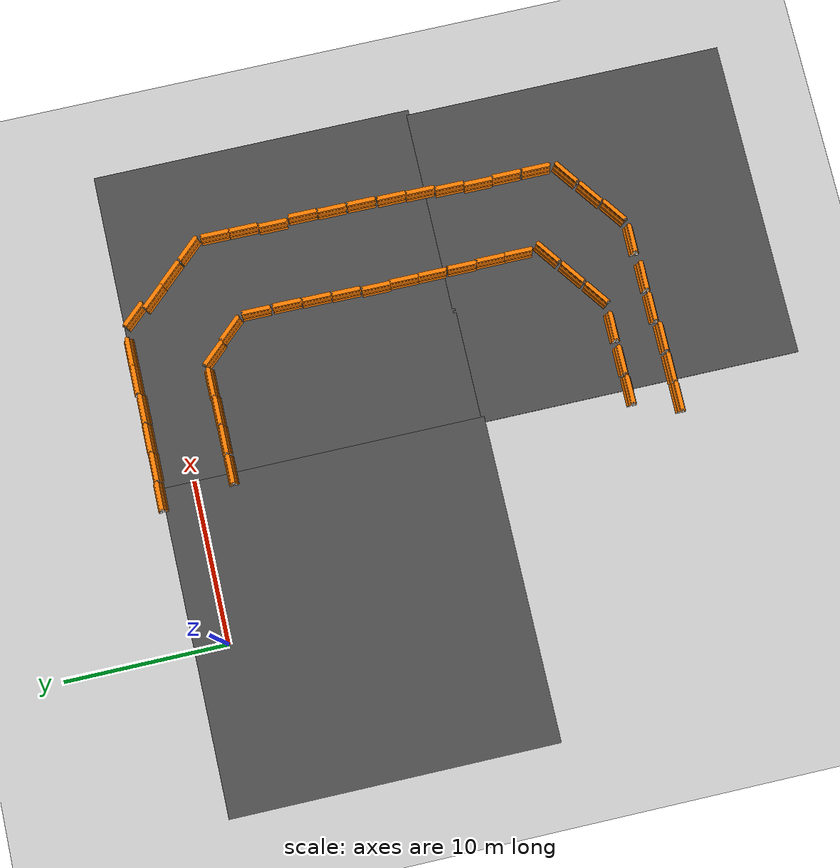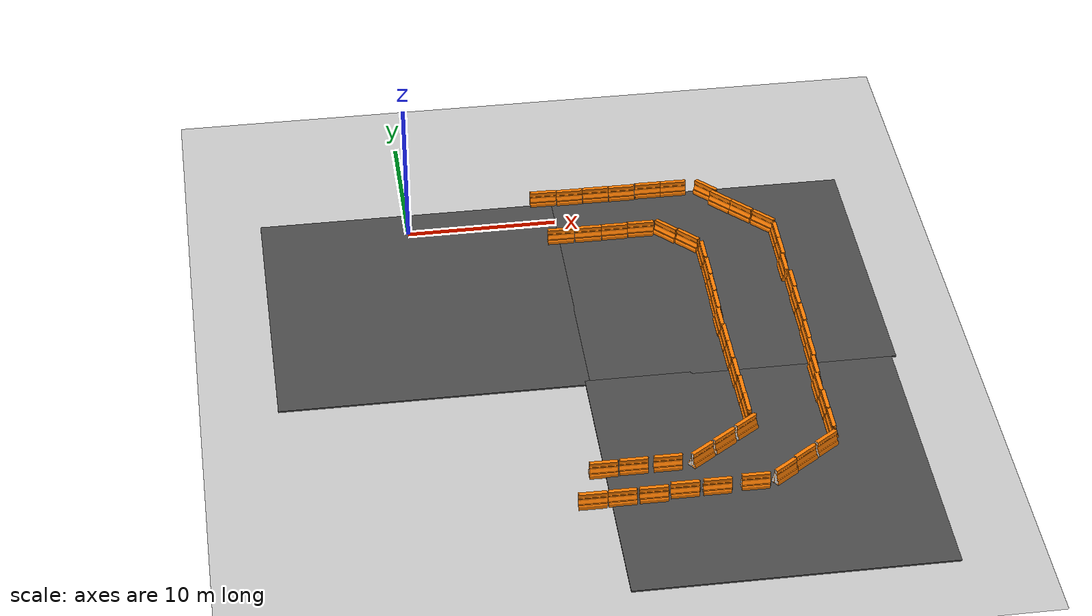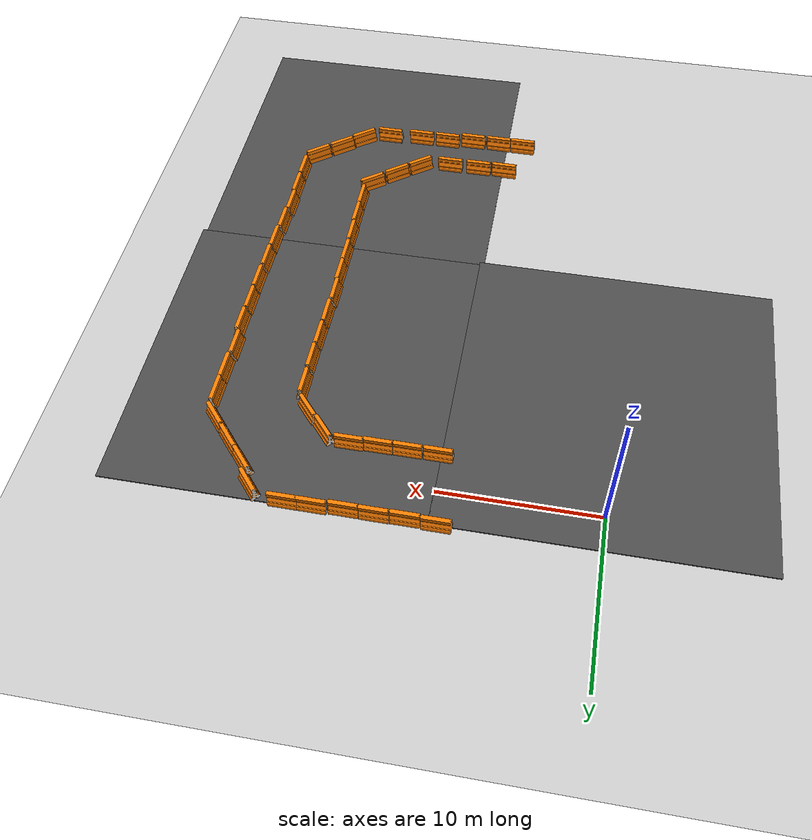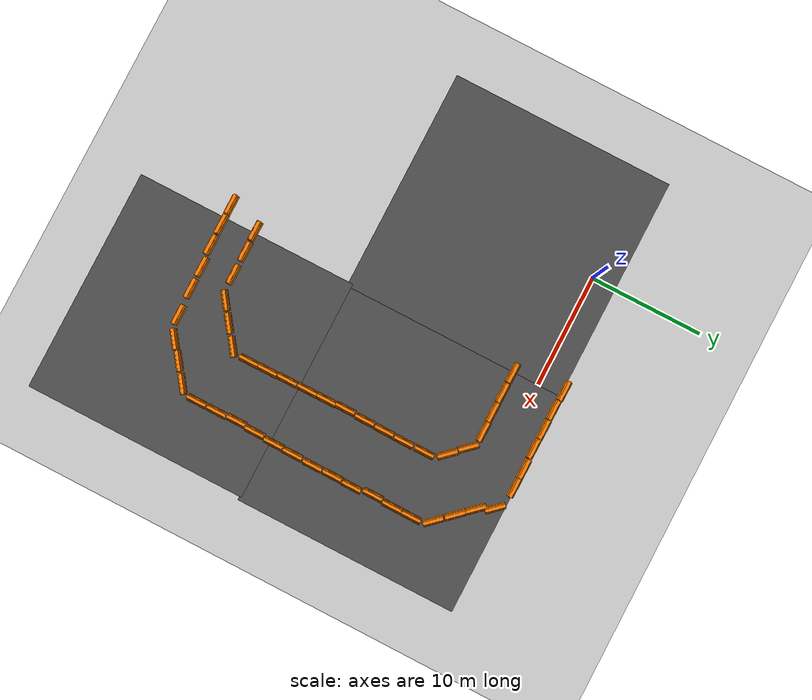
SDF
<sdf version="1.6">
 <world name="default">
  <model name="ground_plane">
   <static>1</static>
   <link name="link">
    <collision name="collision">
     <geometry><plane><normal>0 0 1</normal><size>100 100</size></plane></geometry>
     <surface><friction><ode><mu>100</mu><mu2>50</mu2></ode></friction></surface>
    </collision>
    <visual name="visual">
     <cast_shadows>0</cast_shadows>
     <geometry><plane><normal>0 0 1</normal><size>100 100</size></plane></geometry>
     <material>
      <script><uri>file://media/materials/scripts/gazebo.material</uri><name>Gazebo/Grey</name></script>
     </material>
    </visual>
   </link>
  </model>
  <model name="drc_practice_organge_jersey_barrier_clone_3">
   <static>1</static>
   <link name="link">
    <visual name="visual">
     <geometry>
      <mesh>
       <uri>model://drc_practice_orange_jersey_barrier/meshes/jersey_barrier.dae</uri>
       <scale>1 1 1</scale>
      </mesh>
     </geometry>
    </visual>
    <collision name="collision">
     <geometry>
      <mesh>
       <uri>model://drc_practice_orange_jersey_barrier/meshes/jersey_barrier.dae</uri>
       <scale>1 1 1</scale>
      </mesh>
     </geometry>
    </collision>
   </link>
   <pose>9.47957 2.17157 0 0 -0 1.57</pose>
  </model>
  <model name="drc_practice_organge_jersey_barrier_clone_4">
   <static>1</static>
   <link name="link">
    <visual name="visual">
     <geometry>
      <mesh>
       <uri>model://drc_practice_orange_jersey_barrier/meshes/jersey_barrier.dae</uri>
       <scale>1 1 1</scale>
      </mesh>
     </geometry>
    </visual>
    <collision name="collision">
     <geometry>
      <mesh>
       <uri>model://drc_practice_orange_jersey_barrier/meshes/jersey_barrier.dae</uri>
       <scale>1 1 1</scale>
      </mesh>
     </geometry>
    </collision>
   </link>
   <pose>11.2947 2.1082 0 0 -0 1.57</pose>
  </model>
  <model name="drc_practice_organge_jersey_barrier_clone_5">
   <static>1</static>
   <link name="link">
    <visual name="visual">
     <geometry>
      <mesh>
       <uri>model://drc_practice_orange_jersey_barrier/meshes/jersey_barrier.dae</uri>
       <scale>1 1 1</scale>
      </mesh>
     </geometry>
    </visual>
    <collision name="collision">
     <geometry>
      <mesh>
       <uri>model://drc_practice_orange_jersey_barrier/meshes/jersey_barrier.dae</uri>
       <scale>1 1 1</scale>
      </mesh>
     </geometry>
    </collision>
   </link>
   <pose>13.1056 2.12639 0 0 -0 1.57</pose>
  </model>
  <model name="drc_practice_organge_jersey_barrier_clone_6">
   <static>1</static>
   <link name="link">
    <visual name="visual">
     <geometry>
      <mesh>
       <uri>model://drc_practice_orange_jersey_barrier/meshes/jersey_barrier.dae</uri>
       <scale>1 1 1</scale>
      </mesh>
     </geometry>
    </visual>
    <collision name="collision">
     <geometry>
      <mesh>
       <uri>model://drc_practice_orange_jersey_barrier/meshes/jersey_barrier.dae</uri>
       <scale>1 1 1</scale>
      </mesh>
     </geometry>
    </collision>
   </link>
   <pose>14.9117 2.103 0 0 -0 1.57</pose>
  </model>
  <model name="drc_practice_organge_jersey_barrier_clone_12">
   <static>1</static>
   <link name="link">
    <visual name="visual">
     <geometry>
      <mesh>
       <uri>model://drc_practice_orange_jersey_barrier/meshes/jersey_barrier.dae</uri>
       <scale>1 1 1</scale>
      </mesh>
     </geometry>
    </visual>
    <collision name="collision">
     <geometry>
      <mesh>
       <uri>model://drc_practice_orange_jersey_barrier/meshes/jersey_barrier.dae</uri>
       <scale>1 1 1</scale>
      </mesh>
     </geometry>
    </collision>
   </link>
   <pose>10.1379 -2.29515 0 0 -0 1.57</pose>
  </model>
  <model name="drc_practice_organge_jersey_barrier_clone_13">
   <static>1</static>
   <link name="link">
    <visual name="visual">
     <geometry>
      <mesh>
       <uri>model://drc_practice_orange_jersey_barrier/meshes/jersey_barrier.dae</uri>
       <scale>1 1 1</scale>
      </mesh>
     </geometry>
    </visual>
    <collision name="collision">
     <geometry>
      <mesh>
       <uri>model://drc_practice_orange_jersey_barrier/meshes/jersey_barrier.dae</uri>
       <scale>1 1 1</scale>
      </mesh>
     </geometry>
    </collision>
   </link>
   <pose>12.0033 -2.29598 0 0 -0 1.57</pose>
  </model>
  <model name="drc_practice_organge_jersey_barrier_clone_14">
   <static>1</static>
   <link name="link">
    <visual name="visual">
     <geometry>
      <mesh>
       <uri>model://drc_practice_orange_jersey_barrier/meshes/jersey_barrier.dae</uri>
       <scale>1 1 1</scale>
      </mesh>
     </geometry>
    </visual>
    <collision name="collision">
     <geometry>
      <mesh>
       <uri>model://drc_practice_orange_jersey_barrier/meshes/jersey_barrier.dae</uri>
       <scale>1 1 1</scale>
      </mesh>
     </geometry>
    </collision>
   </link>
   <pose>13.8028 -2.28455 0 0 -0 1.57</pose>
  </model>
  <model name="drc_practice_organge_jersey_barrier_clone_15">
   <static>1</static>
   <link name="link">
    <visual name="visual">
     <geometry>
      <mesh>
       <uri>model://drc_practice_orange_jersey_barrier/meshes/jersey_barrier.dae</uri>
       <scale>1 1 1</scale>
      </mesh>
     </geometry>
    </visual>
    <collision name="collision">
     <geometry>
      <mesh>
       <uri>model://drc_practice_orange_jersey_barrier/meshes/jersey_barrier.dae</uri>
       <scale>1 1 1</scale>
      </mesh>
     </geometry>
    </collision>
   </link>
   <pose>15.5891 -2.23625 0 0 -0 1.57</pose>
  </model>
  <model name="drc_practice_organge_jersey_barrier_clone_16">
   <static>1</static>
   <link name="link">
    <visual name="visual">
     <geometry>
      <mesh>
       <uri>model://drc_practice_orange_jersey_barrier/meshes/jersey_barrier.dae</uri>
       <scale>1 1 1</scale>
      </mesh>
     </geometry>
    </visual>
    <collision name="collision">
     <geometry>
      <mesh>
       <uri>model://drc_practice_orange_jersey_barrier/meshes/jersey_barrier.dae</uri>
       <scale>1 1 1</scale>
      </mesh>
     </geometry>
    </collision>
   </link>
   <pose>16.7665 2.17186 0 0 -0 1.57</pose>
  </model>
  <model name="drc_practice_organge_jersey_barrier_clone_17">
   <static>1</static>
   <link name="link">
    <visual name="visual">
     <geometry>
      <mesh>
       <uri>model://drc_practice_orange_jersey_barrier/meshes/jersey_barrier.dae</uri>
       <scale>1 1 1</scale>
      </mesh>
     </geometry>
    </visual>
    <collision name="collision">
     <geometry>
      <mesh>
       <uri>model://drc_practice_orange_jersey_barrier/meshes/jersey_barrier.dae</uri>
       <scale>1 1 1</scale>
      </mesh>
     </geometry>
    </collision>
   </link>
   <pose>18.5078 2.16757 0 0 -0 1.57</pose>
  </model>
  <model name="drc_practice_organge_jersey_barrier_clone_18_clone">
   <static>1</static>
   <link name="link">
    <visual name="visual">
     <geometry>
      <mesh>
       <uri>model://drc_practice_orange_jersey_barrier/meshes/jersey_barrier.dae</uri>
       <scale>1 1 1</scale>
      </mesh>
     </geometry>
    </visual>
    <collision name="collision">
     <geometry>
      <mesh>
       <uri>model://drc_practice_orange_jersey_barrier/meshes/jersey_barrier.dae</uri>
       <scale>1 1 1</scale>
      </mesh>
     </geometry>
    </collision>
   </link>
   <pose>17.3121 -2.74363 0 0 -0 0.75</pose>
  </model>
  <model name="drc_practice_organge_jersey_barrier_clone_18_clone_0">
   <static>1</static>
   <link name="link">
    <visual name="visual">
     <geometry>
      <mesh>
       <uri>model://drc_practice_orange_jersey_barrier/meshes/jersey_barrier.dae</uri>
       <scale>1 1 1</scale>
      </mesh>
     </geometry>
    </visual>
    <collision name="collision">
     <geometry>
      <mesh>
       <uri>model://drc_practice_orange_jersey_barrier/meshes/jersey_barrier.dae</uri>
       <scale>1 1 1</scale>
      </mesh>
     </geometry>
    </collision>
   </link>
   <pose>18.6026 -4.02925 0 0 -0 0.75</pose>
  </model>
  <model name="drc_practice_organge_jersey_barrier_clone_18_clone_1">
   <static>1</static>
   <link name="link">
    <visual name="visual">
     <geometry>
      <mesh>
       <uri>model://drc_practice_orange_jersey_barrier/meshes/jersey_barrier.dae</uri>
       <scale>1 1 1</scale>
      </mesh>
     </geometry>
    </visual>
    <collision name="collision">
     <geometry>
      <mesh>
       <uri>model://drc_practice_orange_jersey_barrier/meshes/jersey_barrier.dae</uri>
       <scale>1 1 1</scale>
      </mesh>
     </geometry>
    </collision>
   </link>
   <pose>21.567 0.12109 0 0 -0 0.75</pose>
  </model>
  <model name="drc_practice_organge_jersey_barrier_clone_18_clone_2">
   <static>1</static>
   <link name="link">
    <visual name="visual">
     <geometry>
      <mesh>
       <uri>model://drc_practice_orange_jersey_barrier/meshes/jersey_barrier.dae</uri>
       <scale>1 1 1</scale>
      </mesh>
     </geometry>
    </visual>
    <collision name="collision">
     <geometry>
      <mesh>
       <uri>model://drc_practice_orange_jersey_barrier/meshes/jersey_barrier.dae</uri>
       <scale>1 1 1</scale>
      </mesh>
     </geometry>
    </collision>
   </link>
   <pose>22.7772 -1.16386 0 0 -0 0.75</pose>
  </model>
  <model name="drc_practice_organge_jersey_barrier_clone_18_clone_3">
   <static>1</static>
   <link name="link">
    <visual name="visual">
     <geometry>
      <mesh>
       <uri>model://drc_practice_orange_jersey_barrier/meshes/jersey_barrier.dae</uri>
       <scale>1 1 1</scale>
      </mesh>
     </geometry>
    </visual>
    <collision name="collision">
     <geometry>
      <mesh>
       <uri>model://drc_practice_orange_jersey_barrier/meshes/jersey_barrier.dae</uri>
       <scale>1 1 1</scale>
      </mesh>
     </geometry>
    </collision>
   </link>
   <pose>24.0499 -2.547 0 0 -0 0.75</pose>
  </model>
  <model name="drc_practice_organge_jersey_barrier_0">
   <static>1</static>
   <link name="link">
    <visual name="visual">
     <geometry>
      <mesh>
       <uri>model://drc_practice_orange_jersey_barrier/meshes/jersey_barrier.dae</uri>
       <scale>1 1 1</scale>
      </mesh>
     </geometry>
    </visual>
    <collision name="collision">
     <geometry>
      <mesh>
       <uri>model://drc_practice_orange_jersey_barrier/meshes/jersey_barrier.dae</uri>
       <scale>1 1 1</scale>
      </mesh>
     </geometry>
    </collision>
   </link>
   <pose>19.3502 -5.80301 0 0 -0 0</pose>
  </model>
  <model name="drc_practice_organge_jersey_barrier_0_clone">
   <static>1</static>
   <link name="link">
    <visual name="visual">
     <geometry>
      <mesh>
       <uri>model://drc_practice_orange_jersey_barrier/meshes/jersey_barrier.dae</uri>
       <scale>1 1 1</scale>
      </mesh>
     </geometry>
    </visual>
    <collision name="collision">
     <geometry>
      <mesh>
       <uri>model://drc_practice_orange_jersey_barrier/meshes/jersey_barrier.dae</uri>
       <scale>1 1 1</scale>
      </mesh>
     </geometry>
    </collision>
   </link>
   <pose>24.5941 -4.31776 0 0 -0 0</pose>
  </model>
  <model name="drc_practice_organge_jersey_barrier_0_clone_0">
   <static>1</static>
   <link name="link">
    <visual name="visual">
     <geometry>
      <mesh>
       <uri>model://drc_practice_orange_jersey_barrier/meshes/jersey_barrier.dae</uri>
       <scale>1 1 1</scale>
      </mesh>
     </geometry>
    </visual>
    <collision name="collision">
     <geometry>
      <mesh>
       <uri>model://drc_practice_orange_jersey_barrier/meshes/jersey_barrier.dae</uri>
       <scale>1 1 1</scale>
      </mesh>
     </geometry>
    </collision>
   </link>
   <pose>19.3686 -7.72709 0 0 -0 0</pose>
  </model>
  <model name="drc_practice_organge_jersey_barrier_0_clone_1">
   <static>1</static>
   <link name="link">
    <visual name="visual">
     <geometry>
      <mesh>
       <uri>model://drc_practice_orange_jersey_barrier/meshes/jersey_barrier.dae</uri>
       <scale>1 1 1</scale>
      </mesh>
     </geometry>
    </visual>
    <collision name="collision">
     <geometry>
      <mesh>
       <uri>model://drc_practice_orange_jersey_barrier/meshes/jersey_barrier.dae</uri>
       <scale>1 1 1</scale>
      </mesh>
     </geometry>
    </collision>
   </link>
   <pose>19.3301 -9.56124 0 0 -0 0</pose>
  </model>
  <model name="drc_practice_organge_jersey_barrier_0_clone_2">
   <static>1</static>
   <link name="link">
    <visual name="visual">
     <geometry>
      <mesh>
       <uri>model://drc_practice_orange_jersey_barrier/meshes/jersey_barrier.dae</uri>
       <scale>1 1 1</scale>
      </mesh>
     </geometry>
    </visual>
    <collision name="collision">
     <geometry>
      <mesh>
       <uri>model://drc_practice_orange_jersey_barrier/meshes/jersey_barrier.dae</uri>
       <scale>1 1 1</scale>
      </mesh>
     </geometry>
    </collision>
   </link>
   <pose>19.2878 -11.3888 0 0 -0 0</pose>
  </model>
  <model name="drc_practice_organge_jersey_barrier_0_clone_3">
   <static>1</static>
   <link name="link">
    <visual name="visual">
     <geometry>
      <mesh>
       <uri>model://drc_practice_orange_jersey_barrier/meshes/jersey_barrier.dae</uri>
       <scale>1 1 1</scale>
      </mesh>
     </geometry>
    </visual>
    <collision name="collision">
     <geometry>
      <mesh>
       <uri>model://drc_practice_orange_jersey_barrier/meshes/jersey_barrier.dae</uri>
       <scale>1 1 1</scale>
      </mesh>
     </geometry>
    </collision>
   </link>
   <pose>19.2012 -13.2458 0 0 -0 0</pose>
  </model>
  <model name="drc_practice_organge_jersey_barrier_0_clone_4">
   <static>1</static>
   <link name="link">
    <visual name="visual">
     <geometry>
      <mesh>
       <uri>model://drc_practice_orange_jersey_barrier/meshes/jersey_barrier.dae</uri>
       <scale>1 1 1</scale>
      </mesh>
     </geometry>
    </visual>
    <collision name="collision">
     <geometry>
      <mesh>
       <uri>model://drc_practice_orange_jersey_barrier/meshes/jersey_barrier.dae</uri>
       <scale>1 1 1</scale>
      </mesh>
     </geometry>
    </collision>
   </link>
   <pose>19.2645 -14.9926 0 0 -0 0</pose>
  </model>
  <model name="drc_practice_organge_jersey_barrier_0_clone_5">
   <static>1</static>
   <link name="link">
    <visual name="visual">
     <geometry>
      <mesh>
       <uri>model://drc_practice_orange_jersey_barrier/meshes/jersey_barrier.dae</uri>
       <scale>1 1 1</scale>
      </mesh>
     </geometry>
    </visual>
    <collision name="collision">
     <geometry>
      <mesh>
       <uri>model://drc_practice_orange_jersey_barrier/meshes/jersey_barrier.dae</uri>
       <scale>1 1 1</scale>
      </mesh>
     </geometry>
    </collision>
   </link>
   <pose>19.2756 -16.7716 0 0 -0 0</pose>
  </model>
  <model name="drc_practice_organge_jersey_barrier_0_clone_6">
   <static>1</static>
   <link name="link">
    <visual name="visual">
     <geometry>
      <mesh>
       <uri>model://drc_practice_orange_jersey_barrier/meshes/jersey_barrier.dae</uri>
       <scale>1 1 1</scale>
      </mesh>
     </geometry>
    </visual>
    <collision name="collision">
     <geometry>
      <mesh>
       <uri>model://drc_practice_orange_jersey_barrier/meshes/jersey_barrier.dae</uri>
       <scale>1 1 1</scale>
      </mesh>
     </geometry>
    </collision>
   </link>
   <pose>24.5831 -6.10753 0 0 -0 0</pose>
  </model>
  <model name="drc_practice_organge_jersey_barrier_0_clone_7">
   <static>1</static>
   <link name="link">
    <visual name="visual">
     <geometry>
      <mesh>
       <uri>model://drc_practice_orange_jersey_barrier/meshes/jersey_barrier.dae</uri>
       <scale>1 1 1</scale>
      </mesh>
     </geometry>
    </visual>
    <collision name="collision">
     <geometry>
      <mesh>
       <uri>model://drc_practice_orange_jersey_barrier/meshes/jersey_barrier.dae</uri>
       <scale>1 1 1</scale>
      </mesh>
     </geometry>
    </collision>
   </link>
   <pose>24.4664 -7.93871 0 0 -0 0</pose>
  </model>
  <model name="drc_practice_organge_jersey_barrier_0_clone_8">
   <static>1</static>
   <link name="link">
    <visual name="visual">
     <geometry>
      <mesh>
       <uri>model://drc_practice_orange_jersey_barrier/meshes/jersey_barrier.dae</uri>
       <scale>1 1 1</scale>
      </mesh>
     </geometry>
    </visual>
    <collision name="collision">
     <geometry>
      <mesh>
       <uri>model://drc_practice_orange_jersey_barrier/meshes/jersey_barrier.dae</uri>
       <scale>1 1 1</scale>
      </mesh>
     </geometry>
    </collision>
   </link>
   <pose>24.6561 -9.83467 0 0 -0 0</pose>
  </model>
  <model name="drc_practice_organge_jersey_barrier_0_clone_9">
   <static>1</static>
   <link name="link">
    <visual name="visual">
     <geometry>
      <mesh>
       <uri>model://drc_practice_orange_jersey_barrier/meshes/jersey_barrier.dae</uri>
       <scale>1 1 1</scale>
      </mesh>
     </geometry>
    </visual>
    <collision name="collision">
     <geometry>
      <mesh>
       <uri>model://drc_practice_orange_jersey_barrier/meshes/jersey_barrier.dae</uri>
       <scale>1 1 1</scale>
      </mesh>
     </geometry>
    </collision>
   </link>
   <pose>24.5999 -11.6545 0 0 -0 0</pose>
  </model>
  <model name="drc_practice_organge_jersey_barrier_0_clone_10">
   <static>1</static>
   <link name="link">
    <visual name="visual">
     <geometry>
      <mesh>
       <uri>model://drc_practice_orange_jersey_barrier/meshes/jersey_barrier.dae</uri>
       <scale>1 1 1</scale>
      </mesh>
     </geometry>
    </visual>
    <collision name="collision">
     <geometry>
      <mesh>
       <uri>model://drc_practice_orange_jersey_barrier/meshes/jersey_barrier.dae</uri>
       <scale>1 1 1</scale>
      </mesh>
     </geometry>
    </collision>
   </link>
   <pose>24.6074 -13.5105 0 0 -0 0</pose>
  </model>
  <model name="drc_practice_organge_jersey_barrier_0_clone_11">
   <static>1</static>
   <link name="link">
    <visual name="visual">
     <geometry>
      <mesh>
       <uri>model://drc_practice_orange_jersey_barrier/meshes/jersey_barrier.dae</uri>
       <scale>1 1 1</scale>
      </mesh>
     </geometry>
    </visual>
    <collision name="collision">
     <geometry>
      <mesh>
       <uri>model://drc_practice_orange_jersey_barrier/meshes/jersey_barrier.dae</uri>
       <scale>1 1 1</scale>
      </mesh>
     </geometry>
    </collision>
   </link>
   <pose>24.5473 -15.3984 0 0 -0 0</pose>
  </model>
  <model name="drc_practice_organge_jersey_barrier_0_clone_12">
   <static>1</static>
   <link name="link">
    <visual name="visual">
     <geometry>
      <mesh>
       <uri>model://drc_practice_orange_jersey_barrier/meshes/jersey_barrier.dae</uri>
       <scale>1 1 1</scale>
      </mesh>
     </geometry>
    </visual>
    <collision name="collision">
     <geometry>
      <mesh>
       <uri>model://drc_practice_orange_jersey_barrier/meshes/jersey_barrier.dae</uri>
       <scale>1 1 1</scale>
      </mesh>
     </geometry>
    </collision>
   </link>
   <pose>24.4937 -17.2004 0 0 -0 0</pose>
  </model>
  <model name="drc_practice_organge_jersey_barrier_0_clone_13">
   <static>1</static>
   <link name="link">
    <visual name="visual">
     <geometry>
      <mesh>
       <uri>model://drc_practice_orange_jersey_barrier/meshes/jersey_barrier.dae</uri>
       <scale>1 1 1</scale>
      </mesh>
     </geometry>
    </visual>
    <collision name="collision">
     <geometry>
      <mesh>
       <uri>model://drc_practice_orange_jersey_barrier/meshes/jersey_barrier.dae</uri>
       <scale>1 1 1</scale>
      </mesh>
     </geometry>
    </collision>
   </link>
   <pose>24.3746 -19.0288 0 0 -0 0</pose>
  </model>
  <model name="drc_practice_organge_jersey_barrier_0_clone_14">
   <static>1</static>
   <link name="link">
    <visual name="visual">
     <geometry>
      <mesh>
       <uri>model://drc_practice_orange_jersey_barrier/meshes/jersey_barrier.dae</uri>
       <scale>1 1 1</scale>
      </mesh>
     </geometry>
    </visual>
    <collision name="collision">
     <geometry>
      <mesh>
       <uri>model://drc_practice_orange_jersey_barrier/meshes/jersey_barrier.dae</uri>
       <scale>1 1 1</scale>
      </mesh>
     </geometry>
    </collision>
   </link>
   <pose>24.2561 -20.8065 0 0 -0 0</pose>
  </model>
  <model name="drc_practice_organge_jersey_barrier_0_clone_15">
   <static>1</static>
   <link name="link">
    <visual name="visual">
     <geometry>
      <mesh>
       <uri>model://drc_practice_orange_jersey_barrier/meshes/jersey_barrier.dae</uri>
       <scale>1 1 1</scale>
      </mesh>
     </geometry>
    </visual>
    <collision name="collision">
     <geometry>
      <mesh>
       <uri>model://drc_practice_orange_jersey_barrier/meshes/jersey_barrier.dae</uri>
       <scale>1 1 1</scale>
      </mesh>
     </geometry>
    </collision>
   </link>
   <pose>24.3223 -22.6057 0 0 -0 0</pose>
  </model>
  <model name="drc_practice_organge_jersey_barrier_0_clone_16">
   <static>1</static>
   <link name="link">
    <visual name="visual">
     <geometry>
      <mesh>
       <uri>model://drc_practice_orange_jersey_barrier/meshes/jersey_barrier.dae</uri>
       <scale>1 1 1</scale>
      </mesh>
     </geometry>
    </visual>
    <collision name="collision">
     <geometry>
      <mesh>
       <uri>model://drc_practice_orange_jersey_barrier/meshes/jersey_barrier.dae</uri>
       <scale>1 1 1</scale>
      </mesh>
     </geometry>
    </collision>
   </link>
   <pose>24.3288 -24.4741 0 0 -0 0</pose>
  </model>
  <model name="drc_practice_organge_jersey_barrier_0_clone_17">
   <static>1</static>
   <link name="link">
    <visual name="visual">
     <geometry>
      <mesh>
       <uri>model://drc_practice_orange_jersey_barrier/meshes/jersey_barrier.dae</uri>
       <scale>1 1 1</scale>
      </mesh>
     </geometry>
    </visual>
    <collision name="collision">
     <geometry>
      <mesh>
       <uri>model://drc_practice_orange_jersey_barrier/meshes/jersey_barrier.dae</uri>
       <scale>1 1 1</scale>
      </mesh>
     </geometry>
    </collision>
   </link>
   <pose>19.3052 -18.6351 0 0 -0 0</pose>
  </model>
  <model name="drc_practice_organge_jersey_barrier_0_clone_18">
   <static>1</static>
   <link name="link">
    <visual name="visual">
     <geometry>
      <mesh>
       <uri>model://drc_practice_orange_jersey_barrier/meshes/jersey_barrier.dae</uri>
       <scale>1 1 1</scale>
      </mesh>
     </geometry>
    </visual>
    <collision name="collision">
     <geometry>
      <mesh>
       <uri>model://drc_practice_orange_jersey_barrier/meshes/jersey_barrier.dae</uri>
       <scale>1 1 1</scale>
      </mesh>
     </geometry>
    </collision>
   </link>
   <pose>19.3585 -20.4421 0 0 -0 0</pose>
  </model>
  <model name="drc_practice_organge_jersey_barrier_0_clone_19">
   <static>1</static>
   <link name="link">
    <visual name="visual">
     <geometry>
      <mesh>
       <uri>model://drc_practice_orange_jersey_barrier/meshes/jersey_barrier.dae</uri>
       <scale>1 1 1</scale>
      </mesh>
     </geometry>
    </visual>
    <collision name="collision">
     <geometry>
      <mesh>
       <uri>model://drc_practice_orange_jersey_barrier/meshes/jersey_barrier.dae</uri>
       <scale>1 1 1</scale>
      </mesh>
     </geometry>
    </collision>
   </link>
   <pose>19.3721 -22.1895 0 0 -0 0</pose>
  </model>
  <model name="drc_practice_organge_jersey_barrier_clone_18_clone_clone_clone">
   <static>1</static>
   <link name="link">
    <visual name="visual">
     <geometry>
      <mesh>
       <uri>model://drc_practice_orange_jersey_barrier/meshes/jersey_barrier.dae</uri>
       <scale>1 1 1</scale>
      </mesh>
     </geometry>
    </visual>
    <collision name="collision">
     <geometry>
      <mesh>
       <uri>model://drc_practice_orange_jersey_barrier/meshes/jersey_barrier.dae</uri>
       <scale>1 1 1</scale>
      </mesh>
     </geometry>
    </collision>
   </link>
   <pose>23.6163 -26.263 0 0 -0 2.2</pose>
  </model>
  <model name="drc_practice_organge_jersey_barrier_clone_18_clone_clone_clone_0">
   <static>1</static>
   <link name="link">
    <visual name="visual">
     <geometry>
      <mesh>
       <uri>model://drc_practice_orange_jersey_barrier/meshes/jersey_barrier.dae</uri>
       <scale>1 1 1</scale>
      </mesh>
     </geometry>
    </visual>
    <collision name="collision">
     <geometry>
      <mesh>
       <uri>model://drc_practice_orange_jersey_barrier/meshes/jersey_barrier.dae</uri>
       <scale>1 1 1</scale>
      </mesh>
     </geometry>
    </collision>
   </link>
   <pose>17.3683 -25.1779 0 0 -0 2.2</pose>
  </model>
  <model name="drc_practice_organge_jersey_barrier_clone_18_clone_clone_clone_1">
   <static>1</static>
   <link name="link">
    <visual name="visual">
     <geometry>
      <mesh>
       <uri>model://drc_practice_orange_jersey_barrier/meshes/jersey_barrier.dae</uri>
       <scale>1 1 1</scale>
      </mesh>
     </geometry>
    </visual>
    <collision name="collision">
     <geometry>
      <mesh>
       <uri>model://drc_practice_orange_jersey_barrier/meshes/jersey_barrier.dae</uri>
       <scale>1 1 1</scale>
      </mesh>
     </geometry>
    </collision>
   </link>
   <pose>22.0705 -27.4207 0 0 -0 2.2</pose>
  </model>
  <model name="drc_practice_organge_jersey_barrier_clone_18_clone_clone_clone_2">
   <static>1</static>
   <link name="link">
    <visual name="visual">
     <geometry>
      <mesh>
       <uri>model://drc_practice_orange_jersey_barrier/meshes/jersey_barrier.dae</uri>
       <scale>1 1 1</scale>
      </mesh>
     </geometry>
    </visual>
    <collision name="collision">
     <geometry>
      <mesh>
       <uri>model://drc_practice_orange_jersey_barrier/meshes/jersey_barrier.dae</uri>
       <scale>1 1 1</scale>
      </mesh>
     </geometry>
    </collision>
   </link>
   <pose>15.8063 -26.3115 0 0 -0 2.2</pose>
  </model>
  <model name="drc_practice_organge_jersey_barrier_clone_18_clone_clone_clone_3">
   <static>1</static>
   <link name="link">
    <visual name="visual">
     <geometry>
      <mesh>
       <uri>model://drc_practice_orange_jersey_barrier/meshes/jersey_barrier.dae</uri>
       <scale>1 1 1</scale>
      </mesh>
     </geometry>
    </visual>
    <collision name="collision">
     <geometry>
      <mesh>
       <uri>model://drc_practice_orange_jersey_barrier/meshes/jersey_barrier.dae</uri>
       <scale>1 1 1</scale>
      </mesh>
     </geometry>
    </collision>
   </link>
   <pose>20.6147 -28.5779 0 0 -0 2.2</pose>
  </model>
  <model name="drc_practice_organge_jersey_barrier_clone_11_clone">
   <static>1</static>
   <link name="link">
    <visual name="visual">
     <geometry>
      <mesh>
       <uri>model://drc_practice_orange_jersey_barrier/meshes/jersey_barrier.dae</uri>
       <scale>1 1 1</scale>
      </mesh>
     </geometry>
    </visual>
    <collision name="collision">
     <geometry>
      <mesh>
       <uri>model://drc_practice_orange_jersey_barrier/meshes/jersey_barrier.dae</uri>
       <scale>1 1 1</scale>
      </mesh>
     </geometry>
    </collision>
   </link>
   <pose>13.582 -26.7517 0 0 -0 1.57</pose>
  </model>
  <model name="drc_practice_organge_jersey_barrier_clone_11_clone_0">
   <static>1</static>
   <link name="link">
    <visual name="visual">
     <geometry>
      <mesh>
       <uri>model://drc_practice_orange_jersey_barrier/meshes/jersey_barrier.dae</uri>
       <scale>1 1 1</scale>
      </mesh>
     </geometry>
    </visual>
    <collision name="collision">
     <geometry>
      <mesh>
       <uri>model://drc_practice_orange_jersey_barrier/meshes/jersey_barrier.dae</uri>
       <scale>1 1 1</scale>
      </mesh>
     </geometry>
    </collision>
   </link>
   <pose>18.6544 -29.2073 0 0 -0 1.57</pose>
  </model>
  <model name="drc_practice_organge_jersey_barrier_clone_11_clone_1">
   <static>1</static>
   <link name="link">
    <visual name="visual">
     <geometry>
      <mesh>
       <uri>model://drc_practice_orange_jersey_barrier/meshes/jersey_barrier.dae</uri>
       <scale>1 1 1</scale>
      </mesh>
     </geometry>
    </visual>
    <collision name="collision">
     <geometry>
      <mesh>
       <uri>model://drc_practice_orange_jersey_barrier/meshes/jersey_barrier.dae</uri>
       <scale>1 1 1</scale>
      </mesh>
     </geometry>
    </collision>
   </link>
   <pose>16.2429 -29.3338 0 0 -0 1.57</pose>
  </model>
  <model name="drc_practice_organge_jersey_barrier_clone_11_clone_2">
   <static>1</static>
   <link name="link">
    <visual name="visual">
     <geometry>
      <mesh>
       <uri>model://drc_practice_orange_jersey_barrier/meshes/jersey_barrier.dae</uri>
       <scale>1 1 1</scale>
      </mesh>
     </geometry>
    </visual>
    <collision name="collision">
     <geometry>
      <mesh>
       <uri>model://drc_practice_orange_jersey_barrier/meshes/jersey_barrier.dae</uri>
       <scale>1 1 1</scale>
      </mesh>
     </geometry>
    </collision>
   </link>
   <pose>14.2334 -29.3644 0 0 -0 1.57</pose>
  </model>
  <model name="drc_practice_organge_jersey_barrier_clone_11_clone_3">
   <static>1</static>
   <link name="link">
    <visual name="visual">
     <geometry>
      <mesh>
       <uri>model://drc_practice_orange_jersey_barrier/meshes/jersey_barrier.dae</uri>
       <scale>1 1 1</scale>
      </mesh>
     </geometry>
    </visual>
    <collision name="collision">
     <geometry>
      <mesh>
       <uri>model://drc_practice_orange_jersey_barrier/meshes/jersey_barrier.dae</uri>
       <scale>1 1 1</scale>
      </mesh>
     </geometry>
    </collision>
   </link>
   <pose>11.4436 -26.7753 0 0 -0 1.57</pose>
  </model>
  <model name="drc_practice_organge_jersey_barrier_clone_11_clone_4">
   <static>1</static>
   <link name="link">
    <visual name="visual">
     <geometry>
      <mesh>
       <uri>model://drc_practice_orange_jersey_barrier/meshes/jersey_barrier.dae</uri>
       <scale>1 1 1</scale>
      </mesh>
     </geometry>
    </visual>
    <collision name="collision">
     <geometry>
      <mesh>
       <uri>model://drc_practice_orange_jersey_barrier/meshes/jersey_barrier.dae</uri>
       <scale>1 1 1</scale>
      </mesh>
     </geometry>
    </collision>
   </link>
   <pose>12.2715 -29.5613 0 0 -0 1.57</pose>
  </model>
  <model name="drc_practice_organge_jersey_barrier_clone_11_clone_5">
   <static>1</static>
   <link name="link">
    <visual name="visual">
     <geometry>
      <mesh>
       <uri>model://drc_practice_orange_jersey_barrier/meshes/jersey_barrier.dae</uri>
       <scale>1 1 1</scale>
      </mesh>
     </geometry>
    </visual>
    <collision name="collision">
     <geometry>
      <mesh>
       <uri>model://drc_practice_orange_jersey_barrier/meshes/jersey_barrier.dae</uri>
       <scale>1 1 1</scale>
      </mesh>
     </geometry>
    </collision>
   </link>
   <pose>10.3329 -29.5871 0 0 -0 1.57</pose>
  </model>
  <model name="drc_practice_organge_jersey_barrier_clone_11_clone_6">
   <static>1</static>
   <link name="link">
    <visual name="visual">
     <geometry>
      <mesh>
       <uri>model://drc_practice_orange_jersey_barrier/meshes/jersey_barrier.dae</uri>
       <scale>1 1 1</scale>
      </mesh>
     </geometry>
    </visual>
    <collision name="collision">
     <geometry>
      <mesh>
       <uri>model://drc_practice_orange_jersey_barrier/meshes/jersey_barrier.dae</uri>
       <scale>1 1 1</scale>
      </mesh>
     </geometry>
    </collision>
   </link>
   <pose>8.50157 -29.6065 0 0 -0 1.57</pose>
  </model>
  <model name="drc_practice_organge_jersey_barrier_clone_11_clone_7">
   <static>1</static>
   <link name="link">
    <visual name="visual">
     <geometry>
      <mesh>
       <uri>model://drc_practice_orange_jersey_barrier/meshes/jersey_barrier.dae</uri>
       <scale>1 1 1</scale>
      </mesh>
     </geometry>
    </visual>
    <collision name="collision">
     <geometry>
      <mesh>
       <uri>model://drc_practice_orange_jersey_barrier/meshes/jersey_barrier.dae</uri>
       <scale>1 1 1</scale>
      </mesh>
     </geometry>
    </collision>
   </link>
   <pose>9.55315 -26.8139 0 0 -0 1.57</pose>
  </model>
  <model name="asphalt_plane">
   <static>1</static>
   <link name="link">
    <collision name="collision"><geometry><box><size>20 20 0.1</size></box></geometry></collision>
    <visual name="visual">
     <cast_shadows>0</cast_shadows>
     <geometry><box><size>20 20 0.1</size></box></geometry>
     <material>
      <script>
       <uri>model://asphalt_plane/materials/scripts</uri>
       <uri>model://asphalt_plane/materials/textures</uri>
       <name>vrc/asphalt</name>
      </script>
     </material>
    </visual>
   </link>
   <pose>0.043261 -7.92267 0 0 -0 0</pose>
  </model>
  <model name="asphalt_plane_clone">
   <static>1</static>
   <link name="link">
    <collision name="collision"><geometry><box><size>20 20 0.1</size></box></geometry></collision>
    <visual name="visual">
     <cast_shadows>0</cast_shadows>
     <geometry><box><size>20 20 0.1</size></box></geometry>
     <material>
      <script>
       <uri>model://asphalt_plane/materials/scripts</uri>
       <uri>model://asphalt_plane/materials/textures</uri>
       <name>vrc/asphalt</name>
      </script>
     </material>
    </visual>
   </link>
   <pose>19.9972 -7.71914 0 0 -0 0</pose>
  </model>
  <model name="asphalt_plane_clone_0">
   <static>1</static>
   <link name="link">
    <collision name="collision"><geometry><box><size>20 20 0.1</size></box></geometry></collision>
    <visual name="visual">
     <cast_shadows>0</cast_shadows>
     <geometry><box><size>20 20 0.1</size></box></geometry>
     <material>
      <script>
       <uri>model://asphalt_plane/materials/scripts</uri>
       <uri>model://asphalt_plane/materials/textures</uri>
       <name>vrc/asphalt</name>
      </script>
     </material>
    </visual>
   </link>
   <pose>19.6927 -27.5273 0 0 -0 0</pose>
  </model>
  <model name="drc_practice_organge_jersey_barrier_clone_18_clone_2_clone">
   <static>1</static>
   <link name="link">
    <visual name="visual">
     <geometry>
      <mesh>
       <uri>model://drc_practice_orange_jersey_barrier/meshes/jersey_barrier.dae</uri>
       <scale>1 1 1</scale>
      </mesh>
     </geometry>
    </visual>
    <collision name="collision">
     <geometry>
      <mesh>
       <uri>model://drc_practice_orange_jersey_barrier/meshes/jersey_barrier.dae</uri>
       <scale>1 1 1</scale>
      </mesh>
     </geometry>
    </collision>
   </link>
   <pose>20.7485 1.51174 0 0 -0 0.75</pose>
  </model>
  <model name="drc_practice_organge_jersey_barrier_clone_18_clone_clone_clone_0_clone">
   <static>1</static>
   <link name="link">
    <visual name="visual">
     <geometry>
      <mesh>
       <uri>model://drc_practice_orange_jersey_barrier/meshes/jersey_barrier.dae</uri>
       <scale>1 1 1</scale>
      </mesh>
     </geometry>
    </visual>
    <collision name="collision">
     <geometry>
      <mesh>
       <uri>model://drc_practice_orange_jersey_barrier/meshes/jersey_barrier.dae</uri>
       <scale>1 1 1</scale>
      </mesh>
     </geometry>
    </collision>
   </link>
   <pose>18.9469 -23.9928 0 0 -0 2.2</pose>
  </model>
 </world>
</sdf>
